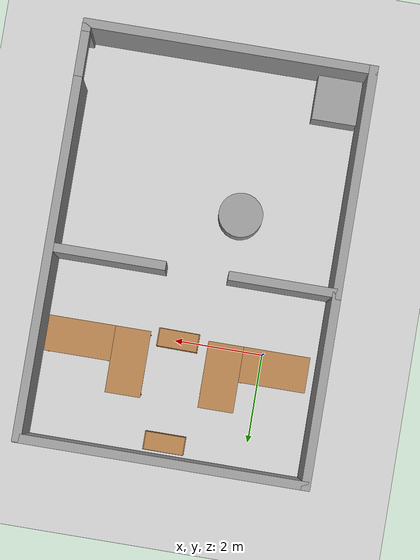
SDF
<sdf version='1.4'>
  <world name='default'>
    <light name='sun' type='directional'>
      <cast_shadows>1</cast_shadows>
      <pose>0 0 10 0 -0 0</pose>
      <diffuse>0.8 0.8 0.8 1</diffuse>
      <specular>0.2 0.2 0.2 1</specular>
      <attenuation>
        <range>1000</range>
        <constant>0.9</constant>
        <linear>0.01</linear>
        <quadratic>0.001</quadratic>
      </attenuation>
      <direction>-0.5 0.1 -0.9</direction>
    </light>
    <model name='ground_plane'>
      <static>1</static>
      <link name='link'>
        <collision name='collision'>
          <geometry>
            <plane>
              <normal>0 0 1</normal>
              <size>100 100</size>
            </plane>
          </geometry>
          <surface>
            <friction>
              <ode>
                <mu>100</mu>
                <mu2>50</mu2>
              </ode>
            </friction>
            <bounce/>
            <contact>
              <ode/>
            </contact>
          </surface>
          <max_contacts>10</max_contacts>
        </collision>
        <visual name='visual'>
          <cast_shadows>0</cast_shadows>
          <geometry>
            <plane>
              <normal>0 0 1</normal>
              <size>100 100</size>
            </plane>
          </geometry>
          <material>
            <script>
              <uri>file://media/materials/scripts/gazebo.material</uri>
              <name>Gazebo/Grey</name>
            </script>
          </material>
        </visual>
        <velocity_decay>
          <linear>0</linear>
          <angular>0</angular>
        </velocity_decay>
        <self_collide>0</self_collide>
        <kinematic>0</kinematic>
        <gravity>1</gravity>
      </link>
    </model>
    <physics type='ode'>
      <max_step_size>0.01</max_step_size>
      <real_time_factor>1</real_time_factor>
      <real_time_update_rate>100</real_time_update_rate>
      <gravity>0 0 -9.8</gravity>
    </physics>
    <scene>
      <ambient>0.4 0.4 0.4 1</ambient>
      <background>0.7 0.7 0.7 1</background>
      <shadows>1</shadows>
    </scene>
    <spherical_coordinates>
      <surface_model>EARTH_WGS84</surface_model>
      <latitude_deg>0</latitude_deg>
      <longitude_deg>0</longitude_deg>
      <elevation>0</elevation>
      <heading_deg>0</heading_deg>
    </spherical_coordinates>
    <model name='upo_walls'>
      <link name='Wall_23'>
        <pose>4.01723 -0.266341 0 0 -0 1.5708</pose>
        <visual name='Wall_23_Visual_0'>
          <pose>-4.54348 0 1.25 0 -0 0</pose>
          <geometry>
            <box>
              <size>0.177799 0.2 2.5</size>
            </box>
          </geometry>
          <material>
            <script>
              <uri>file://media/materials/scripts/gazebo.material</uri>
              <name>Gazebo/Grey</name>
            </script>
          </material>
        </visual>
        <collision name='Wall_23_Collision_0'>
          <geometry>
            <box>
              <size>0.177799 0.2 2.5</size>
            </box>
          </geometry>
          <pose>-4.54348 0 1.25 0 -0 0</pose>
          <max_contacts>10</max_contacts>
          <surface>
            <bounce/>
            <friction>
              <ode/>
            </friction>
            <contact>
              <ode/>
            </contact>
          </surface>
        </collision>
        <visual name='Wall_23_Visual_1'>
          <pose>0.5889 0 1.25 0 -0 0</pose>
          <geometry>
            <box>
              <size>8.08695 0.2 2.5</size>
            </box>
          </geometry>
          <material>
            <script>
              <uri>file://media/materials/scripts/gazebo.material</uri>
              <name>Gazebo/Grey</name>
            </script>
          </material>
        </visual>
        <collision name='Wall_23_Collision_1'>
          <geometry>
            <box>
              <size>8.08695 0.2 2.5</size>
            </box>
          </geometry>
          <pose>0.5889 0 1.25 0 -0 0</pose>
          <max_contacts>10</max_contacts>
          <surface>
            <bounce/>
            <friction>
              <ode/>
            </friction>
            <contact>
              <ode/>
            </contact>
          </surface>
        </collision>
        <visual name='Wall_23_Visual_2'>
          <pose>-3.95458 0 2.25 0 -0 0</pose>
          <geometry>
            <box>
              <size>1 0.2 0.5</size>
            </box>
          </geometry>
          <material>
            <script>
              <uri>file://media/materials/scripts/gazebo.material</uri>
              <name>Gazebo/Grey</name>
            </script>
          </material>
        </visual>
        <collision name='Wall_23_Collision_2'>
          <geometry>
            <box>
              <size>1 0.2 0.5</size>
            </box>
          </geometry>
          <pose>-3.95458 0 2.25 0 -0 0</pose>
          <max_contacts>10</max_contacts>
          <surface>
            <bounce/>
            <friction>
              <ode/>
            </friction>
            <contact>
              <ode/>
            </contact>
          </surface>
        </collision>
        <velocity_decay>
          <linear>0</linear>
          <angular>0</angular>
        </velocity_decay>
        <self_collide>0</self_collide>
        <kinematic>0</kinematic>
        <gravity>1</gravity>
      </link>
      <link name='Wall_27'>
        <collision name='Wall_27_Collision'>
          <geometry>
            <box>
              <size>2.64758 0.2 2.5</size>
            </box>
          </geometry>
          <pose>0 0 1.25 0 -0 0</pose>
          <max_contacts>10</max_contacts>
          <surface>
            <bounce/>
            <friction>
              <ode/>
            </friction>
            <contact>
              <ode/>
            </contact>
          </surface>
        </collision>
        <visual name='Wall_27_Visual'>
          <pose>0 0 1.25 0 -0 0</pose>
          <geometry>
            <box>
              <size>2.64758 0.2 2.5</size>
            </box>
          </geometry>
          <material>
            <script>
              <uri>file://media/materials/scripts/gazebo.material</uri>
              <name>Gazebo/Grey</name>
            </script>
          </material>
        </visual>
        <velocity_decay>
          <linear>0</linear>
          <angular>0</angular>
        </velocity_decay>
        <pose>2.76286 0.061184 0 0 -0 3.14159</pose>
        <self_collide>0</self_collide>
        <kinematic>0</kinematic>
        <gravity>1</gravity>
      </link>
      <link name='Wall_31'>
        <collision name='Wall_31_Collision'>
          <geometry>
            <box>
              <size>6.55071 0.2 2.5</size>
            </box>
          </geometry>
          <pose>0 0 1.25 0 -0 0</pose>
          <max_contacts>10</max_contacts>
          <surface>
            <bounce/>
            <friction>
              <ode/>
            </friction>
            <contact>
              <ode/>
            </contact>
          </surface>
        </collision>
        <visual name='Wall_31_Visual'>
          <pose>0 0 1.25 0 -0 0</pose>
          <geometry>
            <box>
              <size>6.55071 0.2 2.5</size>
            </box>
          </geometry>
          <material>
            <script>
              <uri>file://media/materials/scripts/gazebo.material</uri>
              <name>Gazebo/Grey</name>
            </script>
          </material>
        </visual>
        <velocity_decay>
          <linear>0</linear>
          <angular>0</angular>
        </velocity_decay>
        <pose>0.836109 -4.91271 0 0 -0 3.14159</pose>
        <self_collide>0</self_collide>
        <kinematic>0</kinematic>
        <gravity>1</gravity>
      </link>
      <link name='Wall_32'>
        <collision name='Wall_32_Collision'>
          <geometry>
            <box>
              <size>5.18636 0.2 2.5</size>
            </box>
          </geometry>
          <pose>0 0 1.25 0 -0 0</pose>
          <max_contacts>10</max_contacts>
          <surface>
            <bounce/>
            <friction>
              <ode/>
            </friction>
            <contact>
              <ode/>
            </contact>
          </surface>
        </collision>
        <visual name='Wall_32_Visual'>
          <pose>0 0 1.25 0 -0 0</pose>
          <geometry>
            <box>
              <size>5.18636 0.2 2.5</size>
            </box>
          </geometry>
          <material>
            <script>
              <uri>file://media/materials/scripts/gazebo.material</uri>
              <name>Gazebo/Grey</name>
            </script>
          </material>
        </visual>
        <velocity_decay>
          <linear>0</linear>
          <angular>0</angular>
        </velocity_decay>
        <pose>-2.33925 -2.41953 0 0 -0 1.5708</pose>
        <self_collide>0</self_collide>
        <kinematic>0</kinematic>
        <gravity>1</gravity>
      </link>
      <link name='Wall_40'>
        <collision name='Wall_40_Collision'>
          <geometry>
            <box>
              <size>2.48229 0.2 2.5</size>
            </box>
          </geometry>
          <pose>0 0 1.25 0 -0 0</pose>
          <max_contacts>10</max_contacts>
          <surface>
            <bounce/>
            <friction>
              <ode/>
            </friction>
            <contact>
              <ode/>
            </contact>
          </surface>
        </collision>
        <visual name='Wall_40_Visual'>
          <pose>0 0 1.25 0 -0 0</pose>
          <geometry>
            <box>
              <size>2.48229 0.2 2.5</size>
            </box>
          </geometry>
          <material>
            <script>
              <uri>file://media/materials/scripts/gazebo.material</uri>
              <name>Gazebo/Grey</name>
            </script>
          </material>
        </visual>
        <velocity_decay>
          <linear>0</linear>
          <angular>0</angular>
        </velocity_decay>
        <pose>-1.18284 0.044501 0 0 -0 0</pose>
        <self_collide>0</self_collide>
        <kinematic>0</kinematic>
        <gravity>1</gravity>
      </link>
      <link name='Wall_43'>
        <collision name='Wall_43_Collision'>
          <geometry>
            <box>
              <size>4.35525 0.2 2.5</size>
            </box>
          </geometry>
          <pose>0 0 1.25 0 -0 0</pose>
          <max_contacts>10</max_contacts>
          <surface>
            <bounce/>
            <friction>
              <ode/>
            </friction>
            <contact>
              <ode/>
            </contact>
          </surface>
        </collision>
        <visual name='Wall_43_Visual'>
          <pose>0 0 1.25 0 -0 0</pose>
          <geometry>
            <box>
              <size>4.35525 0.2 2.5</size>
            </box>
          </geometry>
          <material>
            <script>
              <uri>file://media/materials/scripts/gazebo.material</uri>
              <name>Gazebo/Grey</name>
            </script>
          </material>
        </visual>
        <velocity_decay>
          <linear>0</linear>
          <angular>0</angular>
        </velocity_decay>
        <pose>-2.33991 2.20081 0 0 -0 1.5708</pose>
        <self_collide>0</self_collide>
        <kinematic>0</kinematic>
        <gravity>1</gravity>
      </link>
      <link name='Wall_45'>
        <collision name='Wall_45_Collision'>
          <geometry>
            <box>
              <size>6.4887 0.2 2.5</size>
            </box>
          </geometry>
          <pose>0 0 1.25 0 -0 0</pose>
          <max_contacts>10</max_contacts>
          <surface>
            <bounce/>
            <friction>
              <ode/>
            </friction>
            <contact>
              <ode/>
            </contact>
          </surface>
        </collision>
        <visual name='Wall_45_Visual'>
          <pose>0 0 1.25 0 -0 0</pose>
          <geometry>
            <box>
              <size>6.4887 0.2 2.5</size>
            </box>
          </geometry>
          <material>
            <script>
              <uri>file://media/materials/scripts/gazebo.material</uri>
              <name>Gazebo/Grey</name>
            </script>
          </material>
        </visual>
        <velocity_decay>
          <linear>0</linear>
          <angular>0</angular>
        </velocity_decay>
        <pose>0.85405 4.27844 0 0 -0 3.14159</pose>
        <self_collide>0</self_collide>
        <kinematic>0</kinematic>
        <gravity>1</gravity>
      </link>
      <static>1</static>
      <pose>1 -1.5863 0 0 -0 0</pose>
    </model>
    <model name='table'>
      <static>1</static>
      <link name='link'>
        <collision name='surface'>
          <pose>0 0 1 0 -0 0</pose>
          <geometry>
            <box>
              <size>1.5 0.8 0.03</size>
            </box>
          </geometry>
          <surface>
            <friction>
              <ode>
                <mu>0.6</mu>
                <mu2>0.6</mu2>
              </ode>
            </friction>
            <bounce/>
            <contact>
              <ode/>
            </contact>
          </surface>
          <max_contacts>10</max_contacts>
        </collision>
        <visual name='visual1'>
          <pose>0 0 1 0 -0 0</pose>
          <geometry>
            <box>
              <size>1.5 0.8 0.03</size>
            </box>
          </geometry>
          <material>
            <script>
              <uri>file://media/materials/scripts/gazebo.material</uri>
              <name>Gazebo/Wood</name>
            </script>
          </material>
        </visual>
        <collision name='front_left_leg'>
          <pose>0.68 0.38 0.5 0 -0 0</pose>
          <geometry>
            <cylinder>
              <radius>0.02</radius>
              <length>1</length>
            </cylinder>
          </geometry>
          <max_contacts>10</max_contacts>
          <surface>
            <bounce/>
            <friction>
              <ode/>
            </friction>
            <contact>
              <ode/>
            </contact>
          </surface>
        </collision>
        <visual name='front_left_leg'>
          <pose>0.68 0.38 0.5 0 -0 0</pose>
          <geometry>
            <cylinder>
              <radius>0.02</radius>
              <length>1</length>
            </cylinder>
          </geometry>
          <material>
            <script>
              <uri>file://media/materials/scripts/gazebo.material</uri>
              <name>Gazebo/Grey</name>
            </script>
          </material>
        </visual>
        <collision name='front_right_leg'>
          <pose>0.68 -0.38 0.5 0 -0 0</pose>
          <geometry>
            <cylinder>
              <radius>0.02</radius>
              <length>1</length>
            </cylinder>
          </geometry>
          <max_contacts>10</max_contacts>
          <surface>
            <bounce/>
            <friction>
              <ode/>
            </friction>
            <contact>
              <ode/>
            </contact>
          </surface>
        </collision>
        <visual name='front_right_leg'>
          <pose>0.68 -0.38 0.5 0 -0 0</pose>
          <geometry>
            <cylinder>
              <radius>0.02</radius>
              <length>1</length>
            </cylinder>
          </geometry>
          <material>
            <script>
              <uri>file://media/materials/scripts/gazebo.material</uri>
              <name>Gazebo/Grey</name>
            </script>
          </material>
        </visual>
        <collision name='back_right_leg'>
          <pose>-0.68 -0.38 0.5 0 -0 0</pose>
          <geometry>
            <cylinder>
              <radius>0.02</radius>
              <length>1</length>
            </cylinder>
          </geometry>
          <max_contacts>10</max_contacts>
          <surface>
            <bounce/>
            <friction>
              <ode/>
            </friction>
            <contact>
              <ode/>
            </contact>
          </surface>
        </collision>
        <visual name='back_right_leg'>
          <pose>-0.68 -0.38 0.5 0 -0 0</pose>
          <geometry>
            <cylinder>
              <radius>0.02</radius>
              <length>1</length>
            </cylinder>
          </geometry>
          <material>
            <script>
              <uri>file://media/materials/scripts/gazebo.material</uri>
              <name>Gazebo/Grey</name>
            </script>
          </material>
        </visual>
        <collision name='back_left_leg'>
          <pose>-0.68 0.38 0.5 0 -0 0</pose>
          <geometry>
            <cylinder>
              <radius>0.02</radius>
              <length>1</length>
            </cylinder>
          </geometry>
          <max_contacts>10</max_contacts>
          <surface>
            <bounce/>
            <friction>
              <ode/>
            </friction>
            <contact>
              <ode/>
            </contact>
          </surface>
        </collision>
        <visual name='back_left_leg'>
          <pose>-0.68 0.38 0.5 0 -0 0</pose>
          <geometry>
            <cylinder>
              <radius>0.02</radius>
              <length>1</length>
            </cylinder>
          </geometry>
          <material>
            <script>
              <uri>file://media/materials/scripts/gazebo.material</uri>
              <name>Gazebo/Grey</name>
            </script>
          </material>
        </visual>
        <velocity_decay>
          <linear>0</linear>
          <angular>0</angular>
        </velocity_decay>
        <self_collide>0</self_collide>
        <kinematic>0</kinematic>
        <gravity>1</gravity>
      </link>
      <pose>-0.3 0.3 0 0 -0 0</pose>
    </model>
     <model name='table_1'>
      <static>1</static>
      <link name='link'>
        <collision name='surface'>
          <pose frame=''>0 0 1 0 -0 0</pose>
          <geometry>
            <box>
              <size>1.5 0.8 0.03</size>
            </box>
          </geometry>
          <surface>
            <friction>
              <ode>
                <mu>0.6</mu>
                <mu2>0.6</mu2>
              </ode>
              <torsional>
                <ode/>
              </torsional>
            </friction>
            <bounce/>
            <contact>
              <ode/>
            </contact>
          </surface>
          <max_contacts>10</max_contacts>
        </collision>
        <visual name='visual1'>
          <pose frame=''>0 0 1 0 -0 0</pose>
          <geometry>
            <box>
              <size>1.5 0.8 0.03</size>
            </box>
          </geometry>
          <material>
            <script>
              <uri>file://media/materials/scripts/gazebo.material</uri>
              <name>Gazebo/Wood</name>
            </script>
          </material>
        </visual>
        <collision name='front_left_leg'>
          <pose frame=''>0.68 0.38 0.5 0 -0 0</pose>
          <geometry>
            <cylinder>
              <radius>0.02</radius>
              <length>1</length>
            </cylinder>
          </geometry>
          <max_contacts>10</max_contacts>
          <surface>
            <bounce/>
            <friction>
              <ode/>
              <torsional>
                <ode/>
              </torsional>
            </friction>
            <contact>
              <ode/>
            </contact>
          </surface>
        </collision>
        <visual name='front_left_leg'>
          <pose frame=''>0.68 0.38 0.5 0 -0 0</pose>
          <geometry>
            <cylinder>
              <radius>0.02</radius>
              <length>1</length>
            </cylinder>
          </geometry>
          <material>
            <script>
              <uri>file://media/materials/scripts/gazebo.material</uri>
              <name>Gazebo/Grey</name>
            </script>
          </material>
        </visual>
        <collision name='front_right_leg'>
          <pose frame=''>0.68 -0.38 0.5 0 -0 0</pose>
          <geometry>
            <cylinder>
              <radius>0.02</radius>
              <length>1</length>
            </cylinder>
          </geometry>
          <max_contacts>10</max_contacts>
          <surface>
            <bounce/>
            <friction>
              <ode/>
              <torsional>
                <ode/>
              </torsional>
            </friction>
            <contact>
              <ode/>
            </contact>
          </surface>
        </collision>
        <visual name='front_right_leg'>
          <pose frame=''>0.68 -0.38 0.5 0 -0 0</pose>
          <geometry>
            <cylinder>
              <radius>0.02</radius>
              <length>1</length>
            </cylinder>
          </geometry>
          <material>
            <script>
              <uri>file://media/materials/scripts/gazebo.material</uri>
              <name>Gazebo/Grey</name>
            </script>
          </material>
        </visual>
        <collision name='back_right_leg'>
          <pose frame=''>-0.68 -0.38 0.5 0 -0 0</pose>
          <geometry>
            <cylinder>
              <radius>0.02</radius>
              <length>1</length>
            </cylinder>
          </geometry>
          <max_contacts>10</max_contacts>
          <surface>
            <bounce/>
            <friction>
              <ode/>
              <torsional>
                <ode/>
              </torsional>
            </friction>
            <contact>
              <ode/>
            </contact>
          </surface>
        </collision>
        <visual name='back_right_leg'>
          <pose frame=''>-0.68 -0.38 0.5 0 -0 0</pose>
          <geometry>
            <cylinder>
              <radius>0.02</radius>
              <length>1</length>
            </cylinder>
          </geometry>
          <material>
            <script>
              <uri>file://media/materials/scripts/gazebo.material</uri>
              <name>Gazebo/Grey</name>
            </script>
          </material>
        </visual>
        <collision name='back_left_leg'>
          <pose frame=''>-0.68 0.38 0.5 0 -0 0</pose>
          <geometry>
            <cylinder>
              <radius>0.02</radius>
              <length>1</length>
            </cylinder>
          </geometry>
          <max_contacts>10</max_contacts>
          <surface>
            <bounce/>
            <friction>
              <ode/>
              <torsional>
                <ode/>
              </torsional>
            </friction>
            <contact>
              <ode/>
            </contact>
          </surface>
        </collision>
        <visual name='back_left_leg'>
          <pose frame=''>-0.68 0.38 0.5 0 -0 0</pose>
          <geometry>
            <cylinder>
              <radius>0.02</radius>
              <length>1</length>
            </cylinder>
          </geometry>
          <material>
            <script>
              <uri>file://media/materials/scripts/gazebo.material</uri>
              <name>Gazebo/Grey</name>
            </script>
          </material>
        </visual>
        <velocity_decay>
          <linear>0</linear>
          <angular>0</angular>
        </velocity_decay>
        <self_collide>0</self_collide>
        <kinematic>0</kinematic>
        <gravity>1</gravity>
      </link>
      <pose frame=''>4.1 0.3 0 0 -0 0</pose>
    </model>
    <model name='table_2'>
      <static>1</static>
      <link name='link'>
        <collision name='surface'>
          <pose frame=''>0 0 1 0 -0 0</pose>
          <geometry>
            <box>
              <size>1.5 0.8 0.03</size>
            </box>
          </geometry>
          <surface>
            <friction>
              <ode>
                <mu>0.6</mu>
                <mu2>0.6</mu2>
              </ode>
              <torsional>
                <ode/>
              </torsional>
            </friction>
            <bounce/>
            <contact>
              <ode/>
            </contact>
          </surface>
          <max_contacts>10</max_contacts>
        </collision>
        <visual name='visual1'>
          <pose frame=''>0 0 1 0 -0 0</pose>
          <geometry>
            <box>
              <size>1.5 0.8 0.03</size>
            </box>
          </geometry>
          <material>
            <script>
              <uri>file://media/materials/scripts/gazebo.material</uri>
              <name>Gazebo/Wood</name>
            </script>
          </material>
        </visual>
        <collision name='front_left_leg'>
          <pose frame=''>0.68 0.38 0.5 0 -0 0</pose>
          <geometry>
            <cylinder>
              <radius>0.02</radius>
              <length>1</length>
            </cylinder>
          </geometry>
          <max_contacts>10</max_contacts>
          <surface>
            <bounce/>
            <friction>
              <ode/>
              <torsional>
                <ode/>
              </torsional>
            </friction>
            <contact>
              <ode/>
            </contact>
          </surface>
        </collision>
        <visual name='front_left_leg'>
          <pose frame=''>0.68 0.38 0.5 0 -0 0</pose>
          <geometry>
            <cylinder>
              <radius>0.02</radius>
              <length>1</length>
            </cylinder>
          </geometry>
          <material>
            <script>
              <uri>file://media/materials/scripts/gazebo.material</uri>
              <name>Gazebo/Grey</name>
            </script>
          </material>
        </visual>
        <collision name='front_right_leg'>
          <pose frame=''>0.68 -0.38 0.5 0 -0 0</pose>
          <geometry>
            <cylinder>
              <radius>0.02</radius>
              <length>1</length>
            </cylinder>
          </geometry>
          <max_contacts>10</max_contacts>
          <surface>
            <bounce/>
            <friction>
              <ode/>
              <torsional>
                <ode/>
              </torsional>
            </friction>
            <contact>
              <ode/>
            </contact>
          </surface>
        </collision>
        <visual name='front_right_leg'>
          <pose frame=''>0.68 -0.38 0.5 0 -0 0</pose>
          <geometry>
            <cylinder>
              <radius>0.02</radius>
              <length>1</length>
            </cylinder>
          </geometry>
          <material>
            <script>
              <uri>file://media/materials/scripts/gazebo.material</uri>
              <name>Gazebo/Grey</name>
            </script>
          </material>
        </visual>
        <collision name='back_right_leg'>
          <pose frame=''>-0.68 -0.38 0.5 0 -0 0</pose>
          <geometry>
            <cylinder>
              <radius>0.02</radius>
              <length>1</length>
            </cylinder>
          </geometry>
          <max_contacts>10</max_contacts>
          <surface>
            <bounce/>
            <friction>
              <ode/>
              <torsional>
                <ode/>
              </torsional>
            </friction>
            <contact>
              <ode/>
            </contact>
          </surface>
        </collision>
        <visual name='back_right_leg'>
          <pose frame=''>-0.68 -0.38 0.5 0 -0 0</pose>
          <geometry>
            <cylinder>
              <radius>0.02</radius>
              <length>1</length>
            </cylinder>
          </geometry>
          <material>
            <script>
              <uri>file://media/materials/scripts/gazebo.material</uri>
              <name>Gazebo/Grey</name>
            </script>
          </material>
        </visual>
        <collision name='back_left_leg'>
          <pose frame=''>-0.68 0.38 0.5 0 -0 0</pose>
          <geometry>
            <cylinder>
              <radius>0.02</radius>
              <length>1</length>
            </cylinder>
          </geometry>
          <max_contacts>10</max_contacts>
          <surface>
            <bounce/>
            <friction>
              <ode/>
              <torsional>
                <ode/>
              </torsional>
            </friction>
            <contact>
              <ode/>
            </contact>
          </surface>
        </collision>
        <visual name='back_left_leg'>
          <pose frame=''>-0.68 0.38 0.5 0 -0 0</pose>
          <geometry>
            <cylinder>
              <radius>0.02</radius>
              <length>1</length>
            </cylinder>
          </geometry>
          <material>
            <script>
              <uri>file://media/materials/scripts/gazebo.material</uri>
              <name>Gazebo/Grey</name>
            </script>
          </material>
        </visual>
        <velocity_decay>
          <linear>0</linear>
          <angular>0</angular>
        </velocity_decay>
        <self_collide>0</self_collide>
        <kinematic>0</kinematic>
        <gravity>1</gravity>
      </link>
      <pose frame=''>2.95 0.65 0 0 0 -1.570796327</pose>
    </model>
    <model name='table_3'>
      <static>1</static>
      <link name='link'>
        <collision name='surface'>
          <pose frame=''>0 0 1 0 -0 0</pose>
          <geometry>
            <box>
              <size>1.5 0.8 0.03</size>
            </box>
          </geometry>
          <surface>
            <friction>
              <ode>
                <mu>0.6</mu>
                <mu2>0.6</mu2>
              </ode>
              <torsional>
                <ode/>
              </torsional>
            </friction>
            <bounce/>
            <contact>
              <ode/>
            </contact>
          </surface>
          <max_contacts>10</max_contacts>
        </collision>
        <visual name='visual1'>
          <pose frame=''>0 0 1 0 -0 0</pose>
          <geometry>
            <box>
              <size>1.5 0.8 0.03</size>
            </box>
          </geometry>
          <material>
            <script>
              <uri>file://media/materials/scripts/gazebo.material</uri>
              <name>Gazebo/Wood</name>
            </script>
          </material>
        </visual>
        <collision name='front_left_leg'>
          <pose frame=''>0.68 0.38 0.5 0 -0 0</pose>
          <geometry>
            <cylinder>
              <radius>0.02</radius>
              <length>1</length>
            </cylinder>
          </geometry>
          <max_contacts>10</max_contacts>
          <surface>
            <bounce/>
            <friction>
              <ode/>
              <torsional>
                <ode/>
              </torsional>
            </friction>
            <contact>
              <ode/>
            </contact>
          </surface>
        </collision>
        <visual name='front_left_leg'>
          <pose frame=''>0.68 0.38 0.5 0 -0 0</pose>
          <geometry>
            <cylinder>
              <radius>0.02</radius>
              <length>1</length>
            </cylinder>
          </geometry>
          <material>
            <script>
              <uri>file://media/materials/scripts/gazebo.material</uri>
              <name>Gazebo/Grey</name>
            </script>
          </material>
        </visual>
        <collision name='front_right_leg'>
          <pose frame=''>0.68 -0.38 0.5 0 -0 0</pose>
          <geometry>
            <cylinder>
              <radius>0.02</radius>
              <length>1</length>
            </cylinder>
          </geometry>
          <max_contacts>10</max_contacts>
          <surface>
            <bounce/>
            <friction>
              <ode/>
              <torsional>
                <ode/>
              </torsional>
            </friction>
            <contact>
              <ode/>
            </contact>
          </surface>
        </collision>
        <visual name='front_right_leg'>
          <pose frame=''>0.68 -0.38 0.5 0 -0 0</pose>
          <geometry>
            <cylinder>
              <radius>0.02</radius>
              <length>1</length>
            </cylinder>
          </geometry>
          <material>
            <script>
              <uri>file://media/materials/scripts/gazebo.material</uri>
              <name>Gazebo/Grey</name>
            </script>
          </material>
        </visual>
        <collision name='back_right_leg'>
          <pose frame=''>-0.68 -0.38 0.5 0 -0 0</pose>
          <geometry>
            <cylinder>
              <radius>0.02</radius>
              <length>1</length>
            </cylinder>
          </geometry>
          <max_contacts>10</max_contacts>
          <surface>
            <bounce/>
            <friction>
              <ode/>
              <torsional>
                <ode/>
              </torsional>
            </friction>
            <contact>
              <ode/>
            </contact>
          </surface>
        </collision>
        <visual name='back_right_leg'>
          <pose frame=''>-0.68 -0.38 0.5 0 -0 0</pose>
          <geometry>
            <cylinder>
              <radius>0.02</radius>
              <length>1</length>
            </cylinder>
          </geometry>
          <material>
            <script>
              <uri>file://media/materials/scripts/gazebo.material</uri>
              <name>Gazebo/Grey</name>
            </script>
          </material>
        </visual>
        <collision name='back_left_leg'>
          <pose frame=''>-0.68 0.38 0.5 0 -0 0</pose>
          <geometry>
            <cylinder>
              <radius>0.02</radius>
              <length>1</length>
            </cylinder>
          </geometry>
          <max_contacts>10</max_contacts>
          <surface>
            <bounce/>
            <friction>
              <ode/>
              <torsional>
                <ode/>
              </torsional>
            </friction>
            <contact>
              <ode/>
            </contact>
          </surface>
        </collision>
        <visual name='back_left_leg'>
          <pose frame=''>-0.68 0.38 0.5 0 -0 0</pose>
          <geometry>
            <cylinder>
              <radius>0.02</radius>
              <length>1</length>
            </cylinder>
          </geometry>
          <material>
            <script>
              <uri>file://media/materials/scripts/gazebo.material</uri>
              <name>Gazebo/Grey</name>
            </script>
          </material>
        </visual>
        <velocity_decay>
          <linear>0</linear>
          <angular>0</angular>
        </velocity_decay>
        <self_collide>0</self_collide>
        <kinematic>0</kinematic>
        <gravity>1</gravity>
      </link>
      <pose frame=''>0.85 0.65 0 0 0 -1.570796327</pose>
    </model>
    <model name='bookshelf'>
      <static>1</static>
      <link name='link'>
        <inertial>
          <mass>1</mass>
        </inertial>
        <collision name='back'>
          <pose>0 0.005 0.6 0 -0 0</pose>
          <geometry>
            <box>
              <size>0.9 0.01 1.2</size>
            </box>
          </geometry>
          <max_contacts>10</max_contacts>
          <surface>
            <bounce/>
            <friction>
              <ode/>
            </friction>
            <contact>
              <ode/>
            </contact>
          </surface>
        </collision>
        <visual name='visual1'>
          <pose>0 0.005 0.6 0 -0 0</pose>
          <geometry>
            <box>
              <size>0.9 0.01 1.2</size>
            </box>
          </geometry>
          <material>
            <script>
              <uri>file://media/materials/scripts/gazebo.material</uri>
              <name>Gazebo/Wood</name>
            </script>
          </material>
        </visual>
        <collision name='left_side'>
          <pose>0.45 -0.195 0.6 0 -0 0</pose>
          <geometry>
            <box>
              <size>0.02 0.4 1.2</size>
            </box>
          </geometry>
          <max_contacts>10</max_contacts>
          <surface>
            <bounce/>
            <friction>
              <ode/>
            </friction>
            <contact>
              <ode/>
            </contact>
          </surface>
        </collision>
        <visual name='visual2'>
          <pose>0.45 -0.195 0.6 0 -0 0</pose>
          <geometry>
            <box>
              <size>0.02 0.4 1.2</size>
            </box>
          </geometry>
          <material>
            <script>
              <uri>file://media/materials/scripts/gazebo.material</uri>
              <name>Gazebo/Wood</name>
            </script>
          </material>
        </visual>
        <collision name='right_side'>
          <pose>-0.45 -0.195 0.6 0 -0 0</pose>
          <geometry>
            <box>
              <size>0.02 0.4 1.2</size>
            </box>
          </geometry>
          <max_contacts>10</max_contacts>
          <surface>
            <bounce/>
            <friction>
              <ode/>
            </friction>
            <contact>
              <ode/>
            </contact>
          </surface>
        </collision>
        <visual name='visual3'>
          <pose>-0.45 -0.195 0.6 0 -0 0</pose>
          <geometry>
            <box>
              <size>0.02 0.4 1.2</size>
            </box>
          </geometry>
          <material>
            <script>
              <uri>file://media/materials/scripts/gazebo.material</uri>
              <name>Gazebo/Wood</name>
            </script>
          </material>
        </visual>
        <collision name='bottom'>
          <pose>0 -0.195 0.03 0 -0 0</pose>
          <geometry>
            <box>
              <size>0.88 0.4 0.06</size>
            </box>
          </geometry>
          <max_contacts>10</max_contacts>
          <surface>
            <bounce/>
            <friction>
              <ode/>
            </friction>
            <contact>
              <ode/>
            </contact>
          </surface>
        </collision>
        <visual name='visual4'>
          <pose>0 -0.195 0.03 0 -0 0</pose>
          <geometry>
            <box>
              <size>0.88 0.4 0.06</size>
            </box>
          </geometry>
          <material>
            <script>
              <uri>file://media/materials/scripts/gazebo.material</uri>
              <name>Gazebo/Wood</name>
            </script>
          </material>
        </visual>
        <collision name='top'>
          <pose>0 -0.195 1.19 0 -0 0</pose>
          <geometry>
            <box>
              <size>0.88 0.4 0.02</size>
            </box>
          </geometry>
          <max_contacts>10</max_contacts>
          <surface>
            <bounce/>
            <friction>
              <ode/>
            </friction>
            <contact>
              <ode/>
            </contact>
          </surface>
        </collision>
        <visual name='visual5'>
          <pose>0 -0.195 1.19 0 -0 0</pose>
          <geometry>
            <box>
              <size>0.88 0.4 0.02</size>
            </box>
          </geometry>
          <material>
            <script>
              <uri>file://media/materials/scripts/gazebo.material</uri>
              <name>Gazebo/Wood</name>
            </script>
          </material>
        </visual>
        <collision name='low_shelf'>
          <pose>0 -0.195 0.43 0 -0 0</pose>
          <geometry>
            <box>
              <size>0.88 0.4 0.02</size>
            </box>
          </geometry>
          <max_contacts>10</max_contacts>
          <surface>
            <bounce/>
            <friction>
              <ode/>
            </friction>
            <contact>
              <ode/>
            </contact>
          </surface>
        </collision>
        <visual name='visual6'>
          <pose>0 -0.195 0.43 0 -0 0</pose>
          <geometry>
            <box>
              <size>0.88 0.4 0.02</size>
            </box>
          </geometry>
          <material>
            <script>
              <uri>file://media/materials/scripts/gazebo.material</uri>
              <name>Gazebo/Wood</name>
            </script>
          </material>
        </visual>
        <collision name='high_shelf'>
          <pose>0 -0.195 0.8 0 -0 0</pose>
          <geometry>
            <box>
              <size>0.88 0.4 0.02</size>
            </box>
          </geometry>
          <max_contacts>10</max_contacts>
          <surface>
            <bounce/>
            <friction>
              <ode/>
            </friction>
            <contact>
              <ode/>
            </contact>
          </surface>
        </collision>
        <visual name='visual7'>
          <pose>0 -0.195 0.8 0 -0 0</pose>
          <geometry>
            <box>
              <size>0.88 0.4 0.02</size>
            </box>
          </geometry>
          <material>
            <script>
              <uri>file://media/materials/scripts/gazebo.material</uri>
              <name>Gazebo/Wood</name>
            </script>
          </material>
        </visual>
        <velocity_decay>
          <linear>0</linear>
          <angular>0</angular>
        </velocity_decay>
        <self_collide>0</self_collide>
        <kinematic>0</kinematic>
        <gravity>1</gravity>
      </link>
      <pose>1.85 2.5 0 0 0 0</pose>
    </model>
    <model name='unit_box_1'>
      <pose>-0.716151 -5.89711 0.5 0 -0 0</pose>
      <link name='link'>
        <inertial>
          <mass>1</mass>
          <inertia>
            <ixx>1</ixx>
            <ixy>0</ixy>
            <ixz>0</ixz>
            <iyy>1</iyy>
            <iyz>0</iyz>
            <izz>1</izz>
          </inertia>
        </inertial>
        <collision name='collision'>
          <geometry>
            <box>
              <size>1 1 1</size>
            </box>
          </geometry>
          <max_contacts>10</max_contacts>
          <surface>
            <bounce/>
            <friction>
              <ode/>
            </friction>
            <contact>
              <ode/>
            </contact>
          </surface>
        </collision>
        <visual name='visual'>
          <geometry>
            <box>
              <size>1 1 1</size>
            </box>
          </geometry>
          <material>
            <script>
              <uri>file://media/materials/scripts/gazebo.material</uri>
              <name>Gazebo/Grey</name>
            </script>
          </material>
        </visual>
        <velocity_decay>
          <linear>0</linear>
          <angular>0</angular>
        </velocity_decay>
        <self_collide>0</self_collide>
        <kinematic>0</kinematic>
        <gravity>1</gravity>
      </link>
      <static>0</static>
    </model>

<!-- Non mapped obstacles-->
<model name='unit_cylinder_1'>
      <pose>1 -3 0.5 0 -0 0</pose>
      <link name='link'>
        <inertial>
          <mass>1</mass>
          <inertia>
            <ixx>1</ixx>
            <ixy>0</ixy>
            <ixz>0</ixz>
            <iyy>1</iyy>
            <iyz>0</iyz>
            <izz>1</izz>
          </inertia>
        </inertial>
        <collision name='collision'>
          <geometry>
            <cylinder>
              <radius>0.5</radius>
              <length>1</length>
            </cylinder>
          </geometry>
          <max_contacts>10</max_contacts>
          <surface>
            <bounce/>
            <friction>
              <ode/>
            </friction>
            <contact>
              <ode/>
            </contact>
          </surface>
        </collision>
        <visual name='visual'>
          <geometry>
            <cylinder>
              <radius>0.5</radius>
              <length>1</length>
            </cylinder>
          </geometry>
          <material>
            <script>
              <uri>file://media/materials/scripts/gazebo.material</uri>
              <name>Gazebo/Grey</name>
            </script>
          </material>
        </visual>
        <velocity_decay>
          <linear>0</linear>
          <angular>0</angular>
        </velocity_decay>
        <self_collide>0</self_collide>
        <kinematic>0</kinematic>
        <gravity>1</gravity>
      </link>
      <static>0</static>
    </model>

    <model name='bookshelf_clone'>
      <static>1</static>
      <link name='link'>
        <inertial>
          <mass>1</mass>
        </inertial>
        <collision name='back'>
          <pose frame=''>0 0.005 0.6 0 -0 0</pose>
          <geometry>
            <box>
              <size>0.9 0.01 1.2</size>
            </box>
          </geometry>
          <max_contacts>10</max_contacts>
          <surface>
            <bounce/>
            <friction>
              <ode/>
              <torsional>
                <ode/>
              </torsional>
            </friction>
            <contact>
              <ode/>
            </contact>
          </surface>
        </collision>
        <visual name='visual1'>
          <pose frame=''>0 0.005 0.6 0 -0 0</pose>
          <geometry>
            <box>
              <size>0.9 0.01 1.2</size>
            </box>
          </geometry>
          <material>
            <script>
              <uri>file://media/materials/scripts/gazebo.material</uri>
              <name>Gazebo/Wood</name>
            </script>
          </material>
        </visual>
        <collision name='left_side'>
          <pose frame=''>0.45 -0.195 0.6 0 -0 0</pose>
          <geometry>
            <box>
              <size>0.02 0.4 1.2</size>
            </box>
          </geometry>
          <max_contacts>10</max_contacts>
          <surface>
            <bounce/>
            <friction>
              <ode/>
              <torsional>
                <ode/>
              </torsional>
            </friction>
            <contact>
              <ode/>
            </contact>
          </surface>
        </collision>
        <visual name='visual2'>
          <pose frame=''>0.45 -0.195 0.6 0 -0 0</pose>
          <geometry>
            <box>
              <size>0.02 0.4 1.2</size>
            </box>
          </geometry>
          <material>
            <script>
              <uri>file://media/materials/scripts/gazebo.material</uri>
              <name>Gazebo/Wood</name>
            </script>
          </material>
        </visual>
        <collision name='right_side'>
          <pose frame=''>-0.45 -0.195 0.6 0 -0 0</pose>
          <geometry>
            <box>
              <size>0.02 0.4 1.2</size>
            </box>
          </geometry>
          <max_contacts>10</max_contacts>
          <surface>
            <bounce/>
            <friction>
              <ode/>
              <torsional>
                <ode/>
              </torsional>
            </friction>
            <contact>
              <ode/>
            </contact>
          </surface>
        </collision>
        <visual name='visual3'>
          <pose frame=''>-0.45 -0.195 0.6 0 -0 0</pose>
          <geometry>
            <box>
              <size>0.02 0.4 1.2</size>
            </box>
          </geometry>
          <material>
            <script>
              <uri>file://media/materials/scripts/gazebo.material</uri>
              <name>Gazebo/Wood</name>
            </script>
          </material>
        </visual>
        <collision name='bottom'>
          <pose frame=''>0 -0.195 0.03 0 -0 0</pose>
          <geometry>
            <box>
              <size>0.88 0.4 0.06</size>
            </box>
          </geometry>
          <max_contacts>10</max_contacts>
          <surface>
            <bounce/>
            <friction>
              <ode/>
              <torsional>
                <ode/>
              </torsional>
            </friction>
            <contact>
              <ode/>
            </contact>
          </surface>
        </collision>
        <visual name='visual4'>
          <pose frame=''>0 -0.195 0.03 0 -0 0</pose>
          <geometry>
            <box>
              <size>0.88 0.4 0.06</size>
            </box>
          </geometry>
          <material>
            <script>
              <uri>file://media/materials/scripts/gazebo.material</uri>
              <name>Gazebo/Wood</name>
            </script>
          </material>
        </visual>
        <collision name='top'>
          <pose frame=''>0 -0.195 1.19 0 -0 0</pose>
          <geometry>
            <box>
              <size>0.88 0.4 0.02</size>
            </box>
          </geometry>
          <max_contacts>10</max_contacts>
          <surface>
            <bounce/>
            <friction>
              <ode/>
              <torsional>
                <ode/>
              </torsional>
            </friction>
            <contact>
              <ode/>
            </contact>
          </surface>
        </collision>
        <visual name='visual5'>
          <pose frame=''>0 -0.195 1.19 0 -0 0</pose>
          <geometry>
            <box>
              <size>0.88 0.4 0.02</size>
            </box>
          </geometry>
          <material>
            <script>
              <uri>file://media/materials/scripts/gazebo.material</uri>
              <name>Gazebo/Wood</name>
            </script>
          </material>
        </visual>
        <collision name='low_shelf'>
          <pose frame=''>0 -0.195 0.43 0 -0 0</pose>
          <geometry>
            <box>
              <size>0.88 0.4 0.02</size>
            </box>
          </geometry>
          <max_contacts>10</max_contacts>
          <surface>
            <bounce/>
            <friction>
              <ode/>
              <torsional>
                <ode/>
              </torsional>
            </friction>
            <contact>
              <ode/>
            </contact>
          </surface>
        </collision>
        <visual name='visual6'>
          <pose frame=''>0 -0.195 0.43 0 -0 0</pose>
          <geometry>
            <box>
              <size>0.88 0.4 0.02</size>
            </box>
          </geometry>
          <material>
            <script>
              <uri>file://media/materials/scripts/gazebo.material</uri>
              <name>Gazebo/Wood</name>
            </script>
          </material>
        </visual>
        <collision name='high_shelf'>
          <pose frame=''>0 -0.195 0.8 0 -0 0</pose>
          <geometry>
            <box>
              <size>0.88 0.4 0.02</size>
            </box>
          </geometry>
          <max_contacts>10</max_contacts>
          <surface>
            <bounce/>
            <friction>
              <ode/>
              <torsional>
                <ode/>
              </torsional>
            </friction>
            <contact>
              <ode/>
            </contact>
          </surface>
        </collision>
        <visual name='visual7'>
          <pose frame=''>0 -0.195 0.8 0 -0 0</pose>
          <geometry>
            <box>
              <size>0.88 0.4 0.02</size>
            </box>
          </geometry>
          <material>
            <script>
              <uri>file://media/materials/scripts/gazebo.material</uri>
              <name>Gazebo/Wood</name>
            </script>
          </material>
        </visual>
        <velocity_decay>
          <linear>0</linear>
          <angular>0</angular>
        </velocity_decay>
        <self_collide>0</self_collide>
        <kinematic>0</kinematic>
        <gravity>1</gravity>
      </link>
      <pose frame=''>1.92 -0.2 0 0 -0 3.13</pose>
    </model>

  </world>
</sdf>
